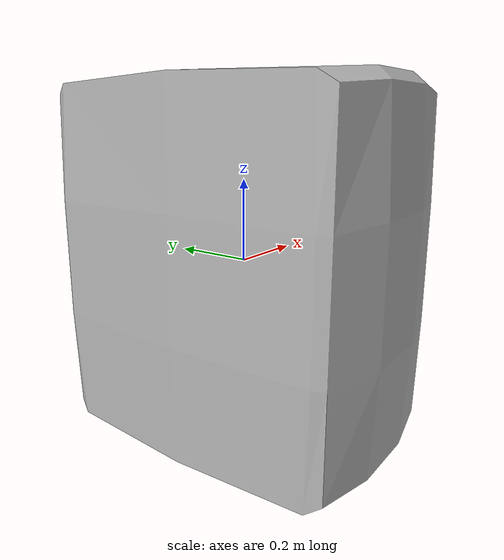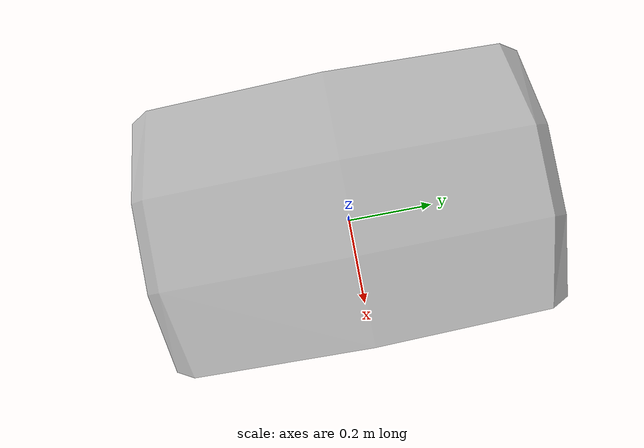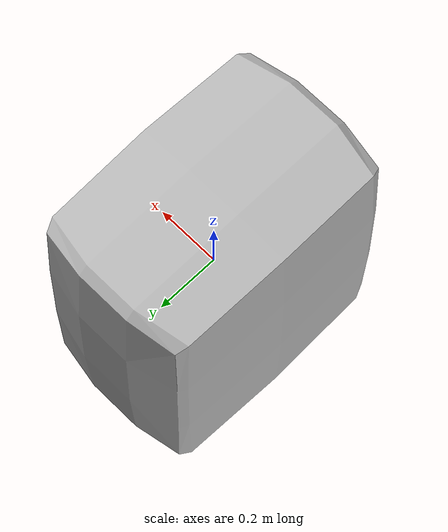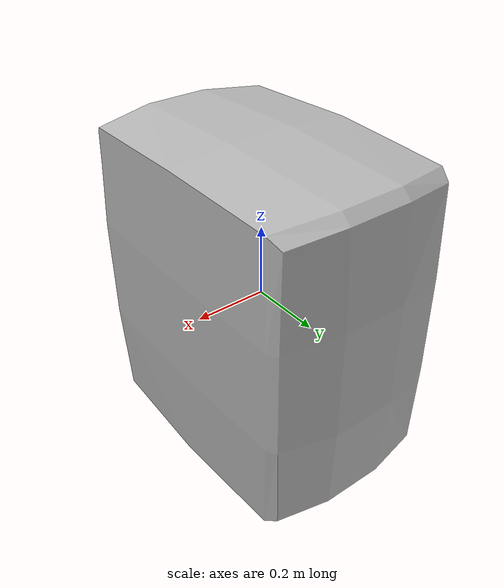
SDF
<?xml version="1.0" ?>
<sdf version='1.5'>
  <model name='m_01_bag_model'>
    <static>true</static>
    <link name='m_01_bag_link'>
      <pose>0 0 0 0 0 0</pose>
      <inertial>
        <pose>0 0 0 0 0 0</pose>
        <mass>1</mass>
        <inertia>
          <ixx>1</ixx>
          <ixy>0</ixy>
          <ixz>0</ixz>
          <iyy>1</iyy>
          <iyz>0</iyz>
          <izz>1</izz>
        </inertia>
      </inertial>
      <collision name='m_01_bag_collision'>
        <pose>0 0 0 0 0 0</pose>
        <geometry>
          <mesh>
            <scale>1 1 1</scale>
            <uri>model://M_01_Bag//meshes//M_01_Bag.dae</uri>
          </mesh>
        </geometry>
        <surface>
          <contact>
            <ode/>
          </contact>
          <friction>
            <ode/>
          </friction>
        </surface>
      </collision>
      <visual name='m_01_bag_visual'>
        <pose>0 0 0 0 0 0</pose>
        <geometry>
          <mesh>
            <scale>1 1 1</scale>
            <uri>model://M_01_Bag//meshes//M_01_Bag.dae</uri>
          </mesh>
        </geometry>
      </visual>
    </link>
  </model>
</sdf>
